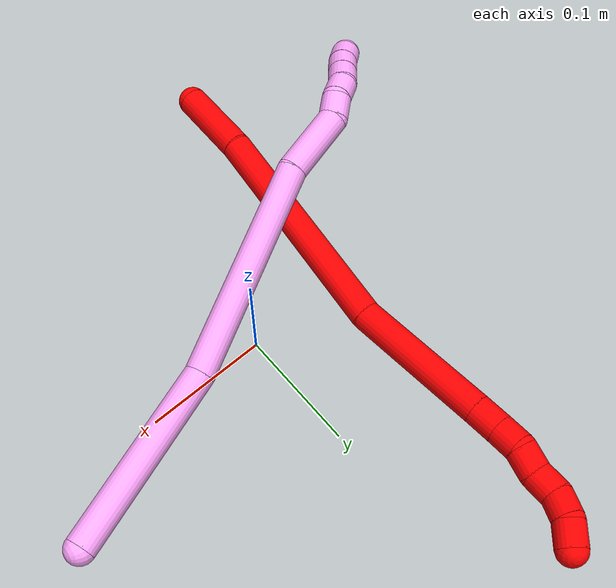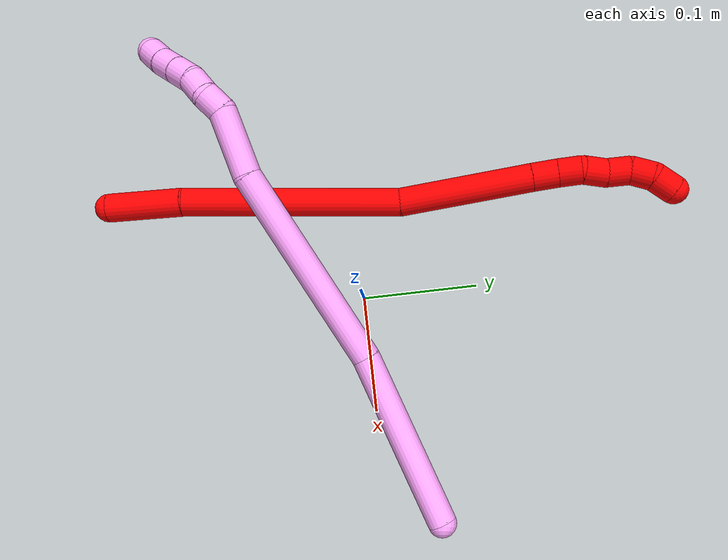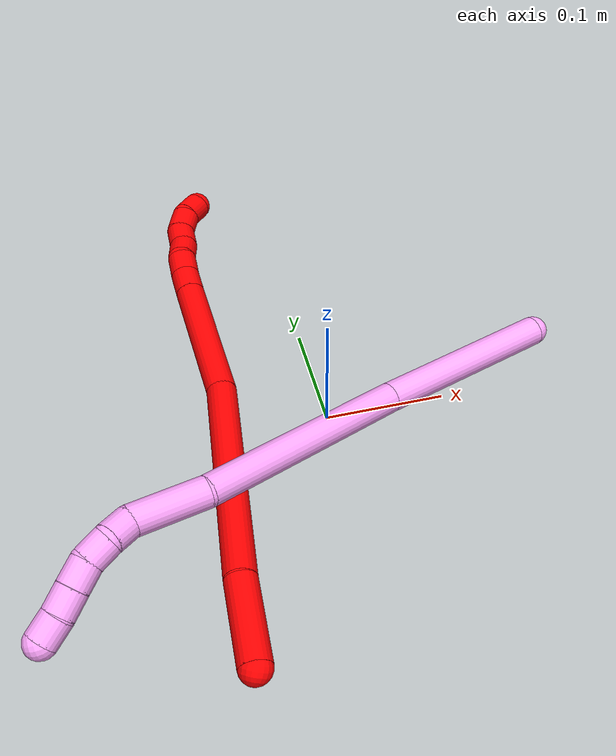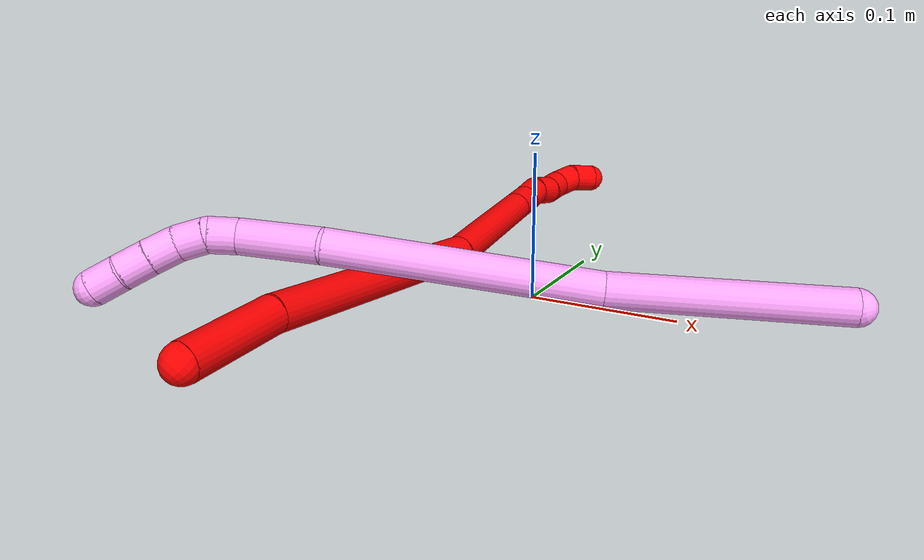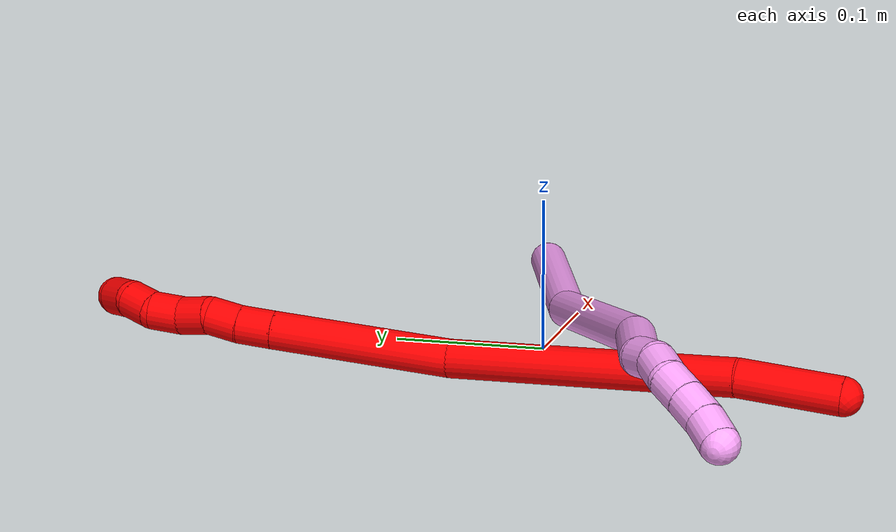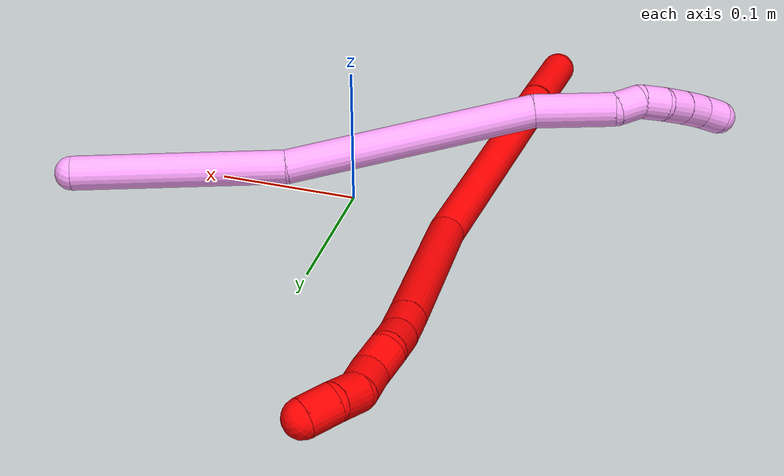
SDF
<sdf version="1.7">
 <world name="default">
  <model name="photoneo_s_sensor">
   <static>1</static>
   <pose>0 0 2 1.57079 1.57079 3.14159</pose>
   <link name="link">
    <inertial><mass>0.1</mass></inertial>
    <sensor name="sensor" type="depth">
     <update_rate>30</update_rate>
     <camera>
      <horizontal_fov>1.22</horizontal_fov>
      <image><width>1920</width><height>1200</height><format>B8G8R8</format></image>
      <clip><near>0.1</near><far>4</far></clip>
      <depth_camera><output>points</output></depth_camera>
     </camera>
     <plugin name="camera_plugin" filename="libgazebo_ros_depth_camera.so">
      <baseline>0.2</baseline>
      <alwaysOn>1</alwaysOn>
      <updateRate>0.0</updateRate>
      <cameraName>camera_ir</cameraName>
      <imageTopicName>/camera/color/image_raw</imageTopicName>
      <cameraInfoTopicName>/camera/color/camera_info</cameraInfoTopicName>
      <depthImageTopicName>/camera/depth/image_raw</depthImageTopicName>
      <depthImageCameraInfoTopicName>/camera/depth/camera_info</depthImageCameraInfoTopicName>
      <pointCloudTopicName>/camera/depth/points</pointCloudTopicName>
      <frameName>fr_optical</frameName>
      <pointCloudCutoff>0.1</pointCloudCutoff>
      <pointCloudCutoffMax>2.0</pointCloudCutoffMax>
      <distortionK1>0</distortionK1>
      <distortionK2>0</distortionK2>
      <distortionK3>0</distortionK3>
      <distortionT1>0</distortionT1>
      <distortionT2>0</distortionT2>
      <CxPrime>0</CxPrime>
      <Cx>0</Cx>
      <Cy>0</Cy>
      <focalLength>0</focalLength>
      <hackBaseline>0</hackBaseline>
     </plugin>
    </sensor>
   </link>
  </model>
  <model name="bin">
   <static>1</static>
   <link name="bottom">
    <collision name="collision-bottom">
     <pose>0 0 -0.01 0 -0 0</pose>
     <geometry><box><size>0.8 0.6 0.02</size></box></geometry>
     <surface>
      <friction><ode><mu>100</mu><mu2>100</mu2></ode></friction>
      <contact><collide_bitmask>65535</collide_bitmask></contact>
     </surface>
    </collision>
   </link>
   <link name="west_wall">
    <collision name="collision-west_wall">
     <pose>-0.41 0 0.1 0 -0 0</pose>
     <geometry><box><size>0.02 0.6 0.2</size></box></geometry>
     <surface>
      <friction><ode><mu>100</mu><mu2>100</mu2></ode></friction>
      <contact><collide_bitmask>65535</collide_bitmask></contact>
     </surface>
    </collision>
   </link>
   <link name="east_wall">
    <collision name="collision-east_wall">
     <pose>0.41 0 0.1 0 -0 0</pose>
     <geometry><box><size>0.02 0.6 0.2</size></box></geometry>
     <surface>
      <friction><ode><mu>100</mu><mu2>100</mu2></ode></friction>
      <contact><collide_bitmask>65535</collide_bitmask></contact>
     </surface>
    </collision>
   </link>
   <link name="south_wall">
    <collision name="collision-south_wall">
     <pose>0 -0.31 0.1 0 -0 0</pose>
     <geometry><box><size>0.8 0.02 0.2</size></box></geometry>
     <surface>
      <friction><ode><mu>100</mu><mu2>100</mu2></ode></friction>
      <contact><collide_bitmask>65535</collide_bitmask></contact>
     </surface>
    </collision>
   </link>
   <link name="north_wall">
    <collision name="collision-north_wall">
     <pose>0 0.31 0.1 0 -0 0</pose>
     <geometry><box><size>0.8 0.02 0.2</size></box></geometry>
     <surface>
      <friction><ode><mu>100</mu><mu2>100</mu2></ode></friction>
      <contact><collide_bitmask>65535</collide_bitmask></contact>
     </surface>
    </collision>
   </link>
  </model>
  <model name="2">
   <static>0</static>
   <link name="2">
    <collision name="collision-cylinder-e_1_1_4">
     <pose>-0.000586 0.021853 0.025009 -0.718153 -0.017646 0.006623</pose>
     <geometry><cylinder><radius>0.0125</radius><length>0.066433</length></cylinder></geometry>
     <surface>
      <friction><ode><mu>1.16</mu><mu2>1.16</mu2><slip1>0</slip1><slip2>0</slip2></ode></friction>
      <contact><ode><kp>1e+06</kp><kd>1</kd><max_vel>0</max_vel><min_depth>0.001</min_depth></ode></contact>
     </surface>
    </collision>
    <visual name="visual-cylinder-e_1_1_4">
     <pose>-0.000586 0.021853 0.025009 -0.718153 -0.017646 0.006623</pose>
     <geometry><cylinder><radius>0.0125</radius><length>0.066433</length></cylinder></geometry>
     <material><ambient>1 0 0 1</ambient></material>
    </visual>
    <collision name="collision-cylinder-e_2_4_5">
     <pose>0.007813 0.111648 0.115896 -0.800821 0.094662 -0.040093</pose>
     <geometry><cylinder><radius>0.0125</radius><length>0.190124</length></cylinder></geometry>
     <surface>
      <friction><ode><mu>1.16</mu><mu2>1.16</mu2><slip1>0</slip1><slip2>0</slip2></ode></friction>
      <contact><ode><kp>1e+06</kp><kd>1</kd><max_vel>0</max_vel><min_depth>0.001</min_depth></ode></contact>
     </surface>
    </collision>
    <visual name="visual-cylinder-e_2_4_5">
     <pose>0.007813 0.111648 0.115896 -0.800821 0.094662 -0.040093</pose>
     <geometry><cylinder><radius>0.0125</radius><length>0.190124</length></cylinder></geometry>
     <material><ambient>1 0 0 1</ambient></material>
    </visual>
    <collision name="collision-cylinder-e_3_5_6">
     <pose>0.010057 0.219535 0.223988 -0.757787 -0.115491 0.046023</pose>
     <geometry><cylinder><radius>0.0125</radius><length>0.117013</length></cylinder></geometry>
     <surface>
      <friction><ode><mu>1.16</mu><mu2>1.16</mu2><slip1>0</slip1><slip2>0</slip2></ode></friction>
      <contact><ode><kp>1e+06</kp><kd>1</kd><max_vel>0</max_vel><min_depth>0.001</min_depth></ode></contact>
     </surface>
    </collision>
    <visual name="visual-cylinder-e_3_5_6">
     <pose>0.010057 0.219535 0.223988 -0.757787 -0.115491 0.046023</pose>
     <geometry><cylinder><radius>0.0125</radius><length>0.117013</length></cylinder></geometry>
     <material><ambient>1 0 0 1</ambient></material>
    </visual>
    <collision name="collision-cylinder-e_4_6_7">
     <pose>0.002147 0.267162 0.274534 -0.744836 -0.10266 0.040134</pose>
     <geometry><cylinder><radius>0.0125</radius><length>0.022787</length></cylinder></geometry>
     <surface>
      <friction><ode><mu>1.16</mu><mu2>1.16</mu2><slip1>0</slip1><slip2>0</slip2></ode></friction>
      <contact><ode><kp>1e+06</kp><kd>1</kd><max_vel>0</max_vel><min_depth>0.001</min_depth></ode></contact>
     </surface>
    </collision>
    <visual name="visual-cylinder-e_4_6_7">
     <pose>0.002147 0.267162 0.274534 -0.744836 -0.10266 0.040134</pose>
     <geometry><cylinder><radius>0.0125</radius><length>0.022787</length></cylinder></geometry>
     <material><ambient>1 0 0 1</ambient></material>
    </visual>
    <collision name="collision-cylinder-e_5_7_8">
     <pose>-8.1e-05 0.280837 0.291196 -0.623717 -0.103013 0.033235</pose>
     <geometry><cylinder><radius>0.0125</radius><length>0.020633</length></cylinder></geometry>
     <surface>
      <friction><ode><mu>1.16</mu><mu2>1.16</mu2><slip1>0</slip1><slip2>0</slip2></ode></friction>
      <contact><ode><kp>1e+06</kp><kd>1</kd><max_vel>0</max_vel><min_depth>0.001</min_depth></ode></contact>
     </surface>
    </collision>
    <visual name="visual-cylinder-e_5_7_8">
     <pose>-8.1e-05 0.280837 0.291196 -0.623717 -0.103013 0.033235</pose>
     <geometry><cylinder><radius>0.0125</radius><length>0.020633</length></cylinder></geometry>
     <material><ambient>1 0 0 1</ambient></material>
    </visual>
    <collision name="collision-cylinder-e_6_8_9">
     <pose>0.00131 0.294387 0.306506 -0.824993 0.233969 -0.102764</pose>
     <geometry><cylinder><radius>0.0125</radius><length>0.021151</length></cylinder></geometry>
     <surface>
      <friction><ode><mu>1.16</mu><mu2>1.16</mu2><slip1>0</slip1><slip2>0</slip2></ode></friction>
      <contact><ode><kp>1e+06</kp><kd>1</kd><max_vel>0</max_vel><min_depth>0.001</min_depth></ode></contact>
     </surface>
    </collision>
    <visual name="visual-cylinder-e_6_8_9">
     <pose>0.00131 0.294387 0.306506 -0.824993 0.233969 -0.102764</pose>
     <geometry><cylinder><radius>0.0125</radius><length>0.021151</length></cylinder></geometry>
     <material><ambient>1 0 0 1</ambient></material>
    </visual>
    <collision name="collision-cylinder-e_7_9_10">
     <pose>0.00333 0.308906 0.321301 -0.727769 -0.041154 0.015675</pose>
     <geometry><cylinder><radius>0.0125</radius><length>0.020951</length></cylinder></geometry>
     <surface>
      <friction><ode><mu>1.16</mu><mu2>1.16</mu2><slip1>0</slip1><slip2>0</slip2></ode></friction>
      <contact><ode><kp>1e+06</kp><kd>1</kd><max_vel>0</max_vel><min_depth>0.001</min_depth></ode></contact>
     </surface>
    </collision>
    <visual name="visual-cylinder-e_7_9_10">
     <pose>0.00333 0.308906 0.321301 -0.727769 -0.041154 0.015675</pose>
     <geometry><cylinder><radius>0.0125</radius><length>0.020951</length></cylinder></geometry>
     <material><ambient>1 0 0 1</ambient></material>
    </visual>
    <collision name="collision-cylinder-e_8_10_11">
     <pose>0.005359 0.319825 0.338073 -0.415962 0.246101 -0.052187</pose>
     <geometry><cylinder><radius>0.0125</radius><length>0.020194</length></cylinder></geometry>
     <surface>
      <friction><ode><mu>1.16</mu><mu2>1.16</mu2><slip1>0</slip1><slip2>0</slip2></ode></friction>
      <contact><ode><kp>1e+06</kp><kd>1</kd><max_vel>0</max_vel><min_depth>0.001</min_depth></ode></contact>
     </surface>
    </collision>
    <visual name="visual-cylinder-e_8_10_11">
     <pose>0.005359 0.319825 0.338073 -0.415962 0.246101 -0.052187</pose>
     <geometry><cylinder><radius>0.0125</radius><length>0.020194</length></cylinder></geometry>
     <material><ambient>1 0 0 1</ambient></material>
    </visual>
    <collision name="collision-cylinder-e_9_11_2">
     <pose>0.013845 0.328099 0.354265 -0.538047 0.620949 -0.176462</pose>
     <geometry><cylinder><radius>0.0125</radius><length>0.020715</length></cylinder></geometry>
     <surface>
      <friction><ode><mu>1.16</mu><mu2>1.16</mu2><slip1>0</slip1><slip2>0</slip2></ode></friction>
      <contact><ode><kp>1e+06</kp><kd>1</kd><max_vel>0</max_vel><min_depth>0.001</min_depth></ode></contact>
     </surface>
    </collision>
    <visual name="visual-cylinder-e_9_11_2">
     <pose>0.013845 0.328099 0.354265 -0.538047 0.620949 -0.176462</pose>
     <geometry><cylinder><radius>0.0125</radius><length>0.020715</length></cylinder></geometry>
     <material><ambient>1 0 0 1</ambient></material>
    </visual>
    <collision name="collision-sphere-2">
     <pose>0.019871 0.332416 0.361499 0 -0 0</pose>
     <geometry><sphere><radius>0.0125</radius></sphere></geometry>
     <surface>
      <friction><ode><mu>1.16</mu><mu2>1.16</mu2><slip1>0</slip1><slip2>0</slip2></ode></friction>
      <contact><ode><kp>1e+06</kp><kd>1</kd><max_vel>0</max_vel><min_depth>0.001</min_depth></ode></contact>
     </surface>
    </collision>
    <visual name="visual-sphere-2">
     <pose>0.019871 0.332416 0.361499 0 -0 0</pose>
     <geometry><sphere><radius>0.0125</radius></sphere></geometry>
     <material><ambient>1 0 0 1</ambient></material>
    </visual>
    <collision name="collision-sphere-11">
     <pose>0.007819 0.323782 0.347031 0 -0 0</pose>
     <geometry><sphere><radius>0.0125</radius></sphere></geometry>
     <surface>
      <friction><ode><mu>1.16</mu><mu2>1.16</mu2><slip1>0</slip1><slip2>0</slip2></ode></friction>
      <contact><ode><kp>1e+06</kp><kd>1</kd><max_vel>0</max_vel><min_depth>0.001</min_depth></ode></contact>
     </surface>
    </collision>
    <visual name="visual-sphere-11">
     <pose>0.007819 0.323782 0.347031 0 -0 0</pose>
     <geometry><sphere><radius>0.0125</radius></sphere></geometry>
     <material><ambient>1 0 0 1</ambient></material>
    </visual>
    <collision name="collision-sphere-10">
     <pose>0.002899 0.315868 0.329116 0 -0 0</pose>
     <geometry><sphere><radius>0.0125</radius></sphere></geometry>
     <surface>
      <friction><ode><mu>1.16</mu><mu2>1.16</mu2><slip1>0</slip1><slip2>0</slip2></ode></friction>
      <contact><ode><kp>1e+06</kp><kd>1</kd><max_vel>0</max_vel><min_depth>0.001</min_depth></ode></contact>
     </surface>
    </collision>
    <visual name="visual-sphere-10">
     <pose>0.002899 0.315868 0.329116 0 -0 0</pose>
     <geometry><sphere><radius>0.0125</radius></sphere></geometry>
     <material><ambient>1 0 0 1</ambient></material>
    </visual>
    <collision name="collision-sphere-9">
     <pose>0.003761 0.301944 0.313486 0 -0 0</pose>
     <geometry><sphere><radius>0.0125</radius></sphere></geometry>
     <surface>
      <friction><ode><mu>1.16</mu><mu2>1.16</mu2><slip1>0</slip1><slip2>0</slip2></ode></friction>
      <contact><ode><kp>1e+06</kp><kd>1</kd><max_vel>0</max_vel><min_depth>0.001</min_depth></ode></contact>
     </surface>
    </collision>
    <visual name="visual-sphere-9">
     <pose>0.003761 0.301944 0.313486 0 -0 0</pose>
     <geometry><sphere><radius>0.0125</radius></sphere></geometry>
     <material><ambient>1 0 0 1</ambient></material>
    </visual>
    <collision name="collision-sphere-4">
     <pose>-0.001172 0.043706 0.050018 0 -0 0</pose>
     <geometry><sphere><radius>0.0125</radius></sphere></geometry>
     <surface>
      <friction><ode><mu>1.16</mu><mu2>1.16</mu2><slip1>0</slip1><slip2>0</slip2></ode></friction>
      <contact><ode><kp>1e+06</kp><kd>1</kd><max_vel>0</max_vel><min_depth>0.001</min_depth></ode></contact>
     </surface>
    </collision>
    <visual name="visual-sphere-4">
     <pose>-0.001172 0.043706 0.050018 0 -0 0</pose>
     <geometry><sphere><radius>0.0125</radius></sphere></geometry>
     <material><ambient>1 0 0 1</ambient></material>
    </visual>
    <collision name="collision-sphere-1">
     <geometry><sphere><radius>0.0125</radius></sphere></geometry>
     <surface>
      <friction><ode><mu>1.16</mu><mu2>1.16</mu2><slip1>0</slip1><slip2>0</slip2></ode></friction>
      <contact><ode><kp>1e+06</kp><kd>1</kd><max_vel>0</max_vel><min_depth>0.001</min_depth></ode></contact>
     </surface>
    </collision>
    <visual name="visual-sphere-1">
     <geometry><sphere><radius>0.0125</radius></sphere></geometry>
     <material><ambient>1 0 0 1</ambient></material>
    </visual>
    <collision name="collision-sphere-8">
     <pose>-0.001142 0.286831 0.299525 0 -0 0</pose>
     <geometry><sphere><radius>0.0125</radius></sphere></geometry>
     <surface>
      <friction><ode><mu>1.16</mu><mu2>1.16</mu2><slip1>0</slip1><slip2>0</slip2></ode></friction>
      <contact><ode><kp>1e+06</kp><kd>1</kd><max_vel>0</max_vel><min_depth>0.001</min_depth></ode></contact>
     </surface>
    </collision>
    <visual name="visual-sphere-8">
     <pose>-0.001142 0.286831 0.299525 0 -0 0</pose>
     <geometry><sphere><radius>0.0125</radius></sphere></geometry>
     <material><ambient>1 0 0 1</ambient></material>
    </visual>
    <collision name="collision-sphere-5">
     <pose>0.016799 0.17959 0.181774 0 -0 0</pose>
     <geometry><sphere><radius>0.0125</radius></sphere></geometry>
     <surface>
      <friction><ode><mu>1.16</mu><mu2>1.16</mu2><slip1>0</slip1><slip2>0</slip2></ode></friction>
      <contact><ode><kp>1e+06</kp><kd>1</kd><max_vel>0</max_vel><min_depth>0.001</min_depth></ode></contact>
     </surface>
    </collision>
    <visual name="visual-sphere-5">
     <pose>0.016799 0.17959 0.181774 0 -0 0</pose>
     <geometry><sphere><radius>0.0125</radius></sphere></geometry>
     <material><ambient>1 0 0 1</ambient></material>
    </visual>
    <collision name="collision-sphere-6">
     <pose>0.003315 0.259479 0.266201 0 -0 0</pose>
     <geometry><sphere><radius>0.0125</radius></sphere></geometry>
     <surface>
      <friction><ode><mu>1.16</mu><mu2>1.16</mu2><slip1>0</slip1><slip2>0</slip2></ode></friction>
      <contact><ode><kp>1e+06</kp><kd>1</kd><max_vel>0</max_vel><min_depth>0.001</min_depth></ode></contact>
     </surface>
    </collision>
    <visual name="visual-sphere-6">
     <pose>0.003315 0.259479 0.266201 0 -0 0</pose>
     <geometry><sphere><radius>0.0125</radius></sphere></geometry>
     <material><ambient>1 0 0 1</ambient></material>
    </visual>
    <collision name="collision-sphere-7">
     <pose>0.000979 0.274844 0.282866 0 -0 0</pose>
     <geometry><sphere><radius>0.0125</radius></sphere></geometry>
     <surface>
      <friction><ode><mu>1.16</mu><mu2>1.16</mu2><slip1>0</slip1><slip2>0</slip2></ode></friction>
      <contact><ode><kp>1e+06</kp><kd>1</kd><max_vel>0</max_vel><min_depth>0.001</min_depth></ode></contact>
     </surface>
    </collision>
    <visual name="visual-sphere-7">
     <pose>0.000979 0.274844 0.282866 0 -0 0</pose>
     <geometry><sphere><radius>0.0125</radius></sphere></geometry>
     <material><ambient>1 0 0 1</ambient></material>
    </visual>
    <inertial>
     <pose>0.006326 0.172405 0.179099 0 -0 0</pose>
     <mass>0.5</mass>
     <inertia>
      <ixx>0.000735</ixx>
      <ixy>0</ixy>
      <ixz>0</ixz>
      <iyy>0.000543</iyy>
      <iyz>0</iyz>
      <izz>-0.000544</izz>
     </inertia>
    </inertial>
   </link>
   <pose>-0.10355 -0.21412 0.011813 -0.756435 0.50617 -0.017082</pose>
  </model>
  <model name="4">
   <static>0</static>
   <link name="4">
    <collision name="collision-cylinder-e_1_1_4">
     <pose>-0.023955 -0.028465 0.067793 0.397531 -0.314953 -0.063947</pose>
     <geometry><cylinder><radius>0.0125</radius><length>0.154661</length></cylinder></geometry>
     <surface>
      <friction><ode><mu>1.16</mu><mu2>1.16</mu2><slip1>0</slip1><slip2>0</slip2></ode></friction>
      <contact><ode><kp>1e+06</kp><kd>1</kd><max_vel>0</max_vel><min_depth>0.001</min_depth></ode></contact>
     </surface>
    </collision>
    <visual name="visual-cylinder-e_1_1_4">
     <pose>-0.023955 -0.028465 0.067793 0.397531 -0.314953 -0.063947</pose>
     <geometry><cylinder><radius>0.0125</radius><length>0.154661</length></cylinder></geometry>
     <material><ambient>1 0.65098 0.996078 1</ambient></material>
    </visual>
    <collision name="collision-cylinder-e_2_4_5">
     <pose>-0.082972 -0.104973 0.206529 0.595257 -0.388435 -0.120523</pose>
     <geometry><cylinder><radius>0.0125</radius><length>0.185153</length></cylinder></geometry>
     <surface>
      <friction><ode><mu>1.16</mu><mu2>1.16</mu2><slip1>0</slip1><slip2>0</slip2></ode></friction>
      <contact><ode><kp>1e+06</kp><kd>1</kd><max_vel>0</max_vel><min_depth>0.001</min_depth></ode></contact>
     </surface>
    </collision>
    <visual name="visual-cylinder-e_2_4_5">
     <pose>-0.082972 -0.104973 0.206529 0.595257 -0.388435 -0.120523</pose>
     <geometry><cylinder><radius>0.0125</radius><length>0.185153</length></cylinder></geometry>
     <material><ambient>1 0.65098 0.996078 1</ambient></material>
    </visual>
    <collision name="collision-cylinder-e_3_5_6">
     <pose>-0.125125 -0.164274 0.304076 0.40034 -0.240692 -0.049061</pose>
     <geometry><cylinder><radius>0.0125</radius><length>0.059489</length></cylinder></geometry>
     <surface>
      <friction><ode><mu>1.16</mu><mu2>1.16</mu2><slip1>0</slip1><slip2>0</slip2></ode></friction>
      <contact><ode><kp>1e+06</kp><kd>1</kd><max_vel>0</max_vel><min_depth>0.001</min_depth></ode></contact>
     </surface>
    </collision>
    <visual name="visual-cylinder-e_3_5_6">
     <pose>-0.125125 -0.164274 0.304076 0.40034 -0.240692 -0.049061</pose>
     <geometry><cylinder><radius>0.0125</radius><length>0.059489</length></cylinder></geometry>
     <material><ambient>1 0.65098 0.996078 1</ambient></material>
    </visual>
    <collision name="collision-cylinder-e_4_6_7">
     <pose>-0.138148 -0.180742 0.337212 0.673113 -0.617382 -0.222215</pose>
     <geometry><cylinder><radius>0.0125</radius><length>0.020497</length></cylinder></geometry>
     <surface>
      <friction><ode><mu>1.16</mu><mu2>1.16</mu2><slip1>0</slip1><slip2>0</slip2></ode></friction>
      <contact><ode><kp>1e+06</kp><kd>1</kd><max_vel>0</max_vel><min_depth>0.001</min_depth></ode></contact>
     </surface>
    </collision>
    <visual name="visual-cylinder-e_4_6_7">
     <pose>-0.138148 -0.180742 0.337212 0.673113 -0.617382 -0.222215</pose>
     <geometry><cylinder><radius>0.0125</radius><length>0.020497</length></cylinder></geometry>
     <material><ambient>1 0.65098 0.996078 1</ambient></material>
    </visual>
    <collision name="collision-cylinder-e_5_7_8">
     <pose>-0.150094 -0.187424 0.351613 0.185037 -0.644386 -0.061927</pose>
     <geometry><cylinder><radius>0.0125</radius><length>0.020022</length></cylinder></geometry>
     <surface>
      <friction><ode><mu>1.16</mu><mu2>1.16</mu2><slip1>0</slip1><slip2>0</slip2></ode></friction>
      <contact><ode><kp>1e+06</kp><kd>1</kd><max_vel>0</max_vel><min_depth>0.001</min_depth></ode></contact>
     </surface>
    </collision>
    <visual name="visual-cylinder-e_5_7_8">
     <pose>-0.150094 -0.187424 0.351613 0.185037 -0.644386 -0.061927</pose>
     <geometry><cylinder><radius>0.0125</radius><length>0.020022</length></cylinder></geometry>
     <material><ambient>1 0.65098 0.996078 1</ambient></material>
    </visual>
    <collision name="collision-cylinder-e_6_8_9">
     <pose>-0.164057 -0.189277 0.365649 0.061608 -0.909833 -0.030142</pose>
     <geometry><cylinder><radius>0.0125</radius><length>0.020139</length></cylinder></geometry>
     <surface>
      <friction><ode><mu>1.16</mu><mu2>1.16</mu2><slip1>0</slip1><slip2>0</slip2></ode></friction>
      <contact><ode><kp>1e+06</kp><kd>1</kd><max_vel>0</max_vel><min_depth>0.001</min_depth></ode></contact>
     </surface>
    </collision>
    <visual name="visual-cylinder-e_6_8_9">
     <pose>-0.164057 -0.189277 0.365649 0.061608 -0.909833 -0.030142</pose>
     <geometry><cylinder><radius>0.0125</radius><length>0.020139</length></cylinder></geometry>
     <material><ambient>1 0.65098 0.996078 1</ambient></material>
    </visual>
    <collision name="collision-cylinder-e_7_9_10">
     <pose>-0.179904 -0.189691 0.377963 0.005372 -0.909637 -0.002627</pose>
     <geometry><cylinder><radius>0.0125</radius><length>0.020012</length></cylinder></geometry>
     <surface>
      <friction><ode><mu>1.16</mu><mu2>1.16</mu2><slip1>0</slip1><slip2>0</slip2></ode></friction>
      <contact><ode><kp>1e+06</kp><kd>1</kd><max_vel>0</max_vel><min_depth>0.001</min_depth></ode></contact>
     </surface>
    </collision>
    <visual name="visual-cylinder-e_7_9_10">
     <pose>-0.179904 -0.189691 0.377963 0.005372 -0.909637 -0.002627</pose>
     <geometry><cylinder><radius>0.0125</radius><length>0.020012</length></cylinder></geometry>
     <material><ambient>1 0.65098 0.996078 1</ambient></material>
    </visual>
    <collision name="collision-cylinder-e_8_10_2">
     <pose>-0.194864 -0.189298 0.391192 -0.059942 -0.782928 0.024748</pose>
     <geometry><cylinder><radius>0.0125</radius><length>0.020027</length></cylinder></geometry>
     <surface>
      <friction><ode><mu>1.16</mu><mu2>1.16</mu2><slip1>0</slip1><slip2>0</slip2></ode></friction>
      <contact><ode><kp>1e+06</kp><kd>1</kd><max_vel>0</max_vel><min_depth>0.001</min_depth></ode></contact>
     </surface>
    </collision>
    <visual name="visual-cylinder-e_8_10_2">
     <pose>-0.194864 -0.189298 0.391192 -0.059942 -0.782928 0.024748</pose>
     <geometry><cylinder><radius>0.0125</radius><length>0.020027</length></cylinder></geometry>
     <material><ambient>1 0.65098 0.996078 1</ambient></material>
    </visual>
    <collision name="collision-sphere-2">
     <pose>-0.201927 -0.188873 0.398278 0 -0 0</pose>
     <geometry><sphere><radius>0.0125</radius></sphere></geometry>
     <surface>
      <friction><ode><mu>1.16</mu><mu2>1.16</mu2><slip1>0</slip1><slip2>0</slip2></ode></friction>
      <contact><ode><kp>1e+06</kp><kd>1</kd><max_vel>0</max_vel><min_depth>0.001</min_depth></ode></contact>
     </surface>
    </collision>
    <visual name="visual-sphere-2">
     <pose>-0.201927 -0.188873 0.398278 0 -0 0</pose>
     <geometry><sphere><radius>0.0125</radius></sphere></geometry>
     <material><ambient>1 0.65098 0.996078 1</ambient></material>
    </visual>
    <collision name="collision-sphere-10">
     <pose>-0.187801 -0.189724 0.384107 0 -0 0</pose>
     <geometry><sphere><radius>0.0125</radius></sphere></geometry>
     <surface>
      <friction><ode><mu>1.16</mu><mu2>1.16</mu2><slip1>0</slip1><slip2>0</slip2></ode></friction>
      <contact><ode><kp>1e+06</kp><kd>1</kd><max_vel>0</max_vel><min_depth>0.001</min_depth></ode></contact>
     </surface>
    </collision>
    <visual name="visual-sphere-10">
     <pose>-0.187801 -0.189724 0.384107 0 -0 0</pose>
     <geometry><sphere><radius>0.0125</radius></sphere></geometry>
     <material><ambient>1 0.65098 0.996078 1</ambient></material>
    </visual>
    <collision name="collision-sphere-9">
     <pose>-0.172006 -0.189658 0.371819 0 -0 0</pose>
     <geometry><sphere><radius>0.0125</radius></sphere></geometry>
     <surface>
      <friction><ode><mu>1.16</mu><mu2>1.16</mu2><slip1>0</slip1><slip2>0</slip2></ode></friction>
      <contact><ode><kp>1e+06</kp><kd>1</kd><max_vel>0</max_vel><min_depth>0.001</min_depth></ode></contact>
     </surface>
    </collision>
    <visual name="visual-sphere-9">
     <pose>-0.172006 -0.189658 0.371819 0 -0 0</pose>
     <geometry><sphere><radius>0.0125</radius></sphere></geometry>
     <material><ambient>1 0.65098 0.996078 1</ambient></material>
    </visual>
    <collision name="collision-sphere-4">
     <pose>-0.047909 -0.056931 0.135586 0 -0 0</pose>
     <geometry><sphere><radius>0.0125</radius></sphere></geometry>
     <surface>
      <friction><ode><mu>1.16</mu><mu2>1.16</mu2><slip1>0</slip1><slip2>0</slip2></ode></friction>
      <contact><ode><kp>1e+06</kp><kd>1</kd><max_vel>0</max_vel><min_depth>0.001</min_depth></ode></contact>
     </surface>
    </collision>
    <visual name="visual-sphere-4">
     <pose>-0.047909 -0.056931 0.135586 0 -0 0</pose>
     <geometry><sphere><radius>0.0125</radius></sphere></geometry>
     <material><ambient>1 0.65098 0.996078 1</ambient></material>
    </visual>
    <collision name="collision-sphere-1">
     <geometry><sphere><radius>0.0125</radius></sphere></geometry>
     <surface>
      <friction><ode><mu>1.16</mu><mu2>1.16</mu2><slip1>0</slip1><slip2>0</slip2></ode></friction>
      <contact><ode><kp>1e+06</kp><kd>1</kd><max_vel>0</max_vel><min_depth>0.001</min_depth></ode></contact>
     </surface>
    </collision>
    <visual name="visual-sphere-1">
     <geometry><sphere><radius>0.0125</radius></sphere></geometry>
     <material><ambient>1 0.65098 0.996078 1</ambient></material>
    </visual>
    <collision name="collision-sphere-8">
     <pose>-0.156108 -0.188896 0.35948 0 -0 0</pose>
     <geometry><sphere><radius>0.0125</radius></sphere></geometry>
     <surface>
      <friction><ode><mu>1.16</mu><mu2>1.16</mu2><slip1>0</slip1><slip2>0</slip2></ode></friction>
      <contact><ode><kp>1e+06</kp><kd>1</kd><max_vel>0</max_vel><min_depth>0.001</min_depth></ode></contact>
     </surface>
    </collision>
    <visual name="visual-sphere-8">
     <pose>-0.156108 -0.188896 0.35948 0 -0 0</pose>
     <geometry><sphere><radius>0.0125</radius></sphere></geometry>
     <material><ambient>1 0.65098 0.996078 1</ambient></material>
    </visual>
    <collision name="collision-sphere-5">
     <pose>-0.118034 -0.153016 0.277473 0 -0 0</pose>
     <geometry><sphere><radius>0.0125</radius></sphere></geometry>
     <surface>
      <friction><ode><mu>1.16</mu><mu2>1.16</mu2><slip1>0</slip1><slip2>0</slip2></ode></friction>
      <contact><ode><kp>1e+06</kp><kd>1</kd><max_vel>0</max_vel><min_depth>0.001</min_depth></ode></contact>
     </surface>
    </collision>
    <visual name="visual-sphere-5">
     <pose>-0.118034 -0.153016 0.277473 0 -0 0</pose>
     <geometry><sphere><radius>0.0125</radius></sphere></geometry>
     <material><ambient>1 0.65098 0.996078 1</ambient></material>
    </visual>
    <collision name="collision-sphere-6">
     <pose>-0.132215 -0.175532 0.330678 0 -0 0</pose>
     <geometry><sphere><radius>0.0125</radius></sphere></geometry>
     <surface>
      <friction><ode><mu>1.16</mu><mu2>1.16</mu2><slip1>0</slip1><slip2>0</slip2></ode></friction>
      <contact><ode><kp>1e+06</kp><kd>1</kd><max_vel>0</max_vel><min_depth>0.001</min_depth></ode></contact>
     </surface>
    </collision>
    <visual name="visual-sphere-6">
     <pose>-0.132215 -0.175532 0.330678 0 -0 0</pose>
     <geometry><sphere><radius>0.0125</radius></sphere></geometry>
     <material><ambient>1 0.65098 0.996078 1</ambient></material>
    </visual>
    <collision name="collision-sphere-7">
     <pose>-0.144081 -0.185951 0.343746 0 -0 0</pose>
     <geometry><sphere><radius>0.0125</radius></sphere></geometry>
     <surface>
      <friction><ode><mu>1.16</mu><mu2>1.16</mu2><slip1>0</slip1><slip2>0</slip2></ode></friction>
      <contact><ode><kp>1e+06</kp><kd>1</kd><max_vel>0</max_vel><min_depth>0.001</min_depth></ode></contact>
     </surface>
    </collision>
    <visual name="visual-sphere-7">
     <pose>-0.144081 -0.185951 0.343746 0 -0 0</pose>
     <geometry><sphere><radius>0.0125</radius></sphere></geometry>
     <material><ambient>1 0.65098 0.996078 1</ambient></material>
    </visual>
    <inertial>
     <pose>-0.086309 -0.104935 0.207055 0 -0 0</pose>
     <mass>0.5</mass>
     <inertia>
      <ixx>0.00072</ixx>
      <ixy>0</ixy>
      <ixz>0</ixz>
      <iyy>0.000677</iyy>
      <iyz>0</iyz>
      <izz>0.000744</izz>
     </inertia>
    </inertial>
   </link>
   <pose>0.199038 0.045522 0.012486 -1.82611 -0.366559 1.54982</pose>
  </model>
 </world>
</sdf>
